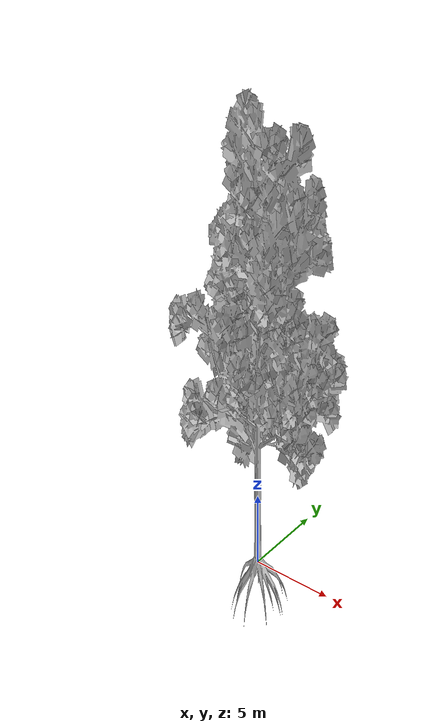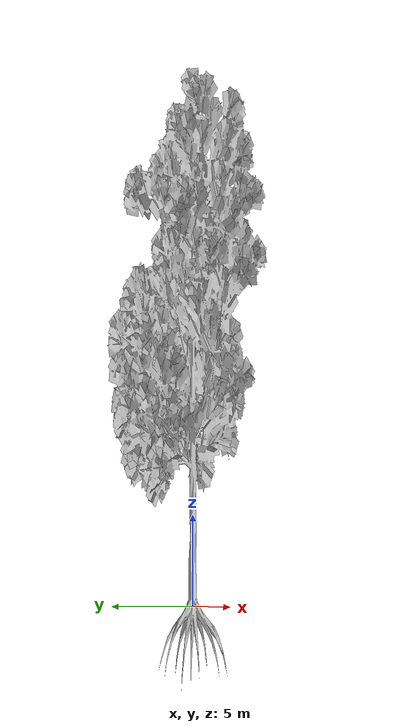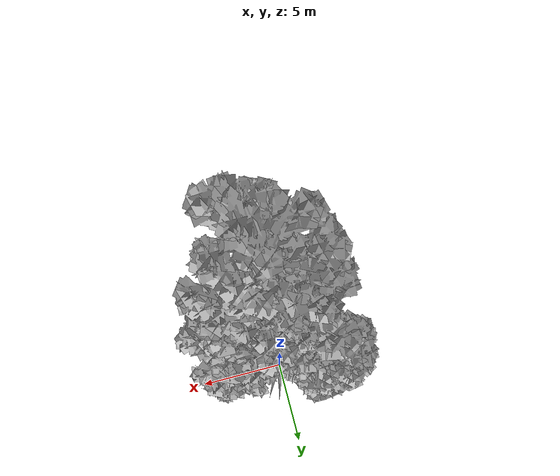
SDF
<?xml version="1.0" ?>
<sdf version="1.6">
  <model name="tree_pine1">
    <static>1</static>
    <link name="link">
      <collision name="collision">
        <geometry>
          <mesh>
            <uri>model://tree_pine1/meshes/OC59_1.obj</uri><scale>2 2 3.5</scale>
          </mesh>
        </geometry>
      </collision>
      <visual name="branch">
        <geometry>
          <mesh>
            <uri>model://tree_pine1/meshes/OC59_1.obj</uri><scale>2 2 3.5</scale>
          </mesh>
        </geometry>

        <cast_shadows>1</cast_shadows>
      </visual>
    </link>
  </model>
</sdf>
